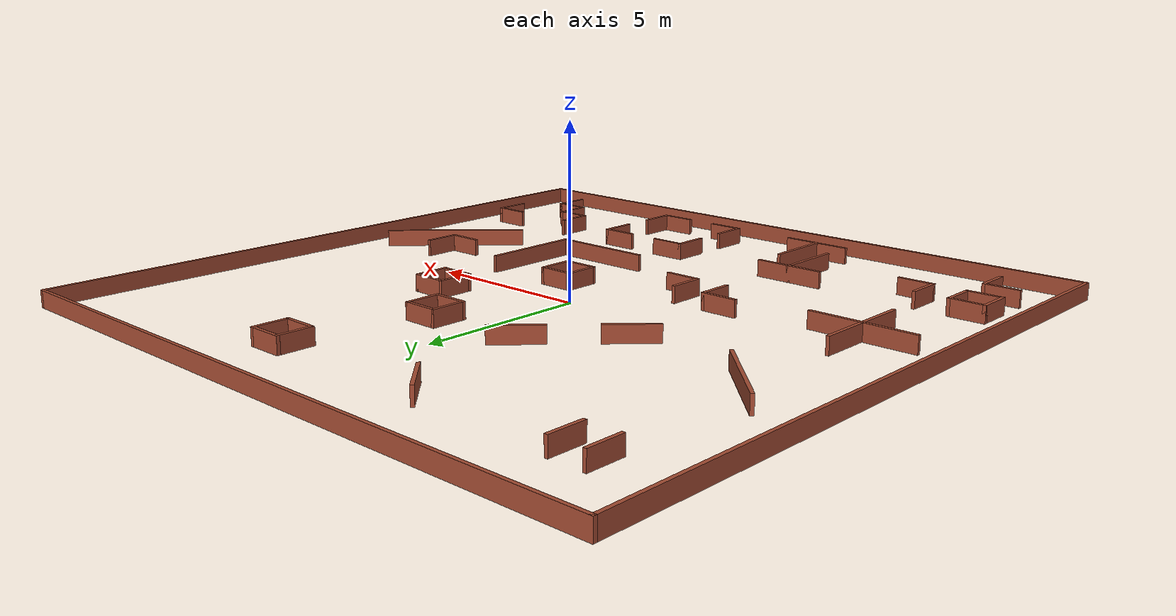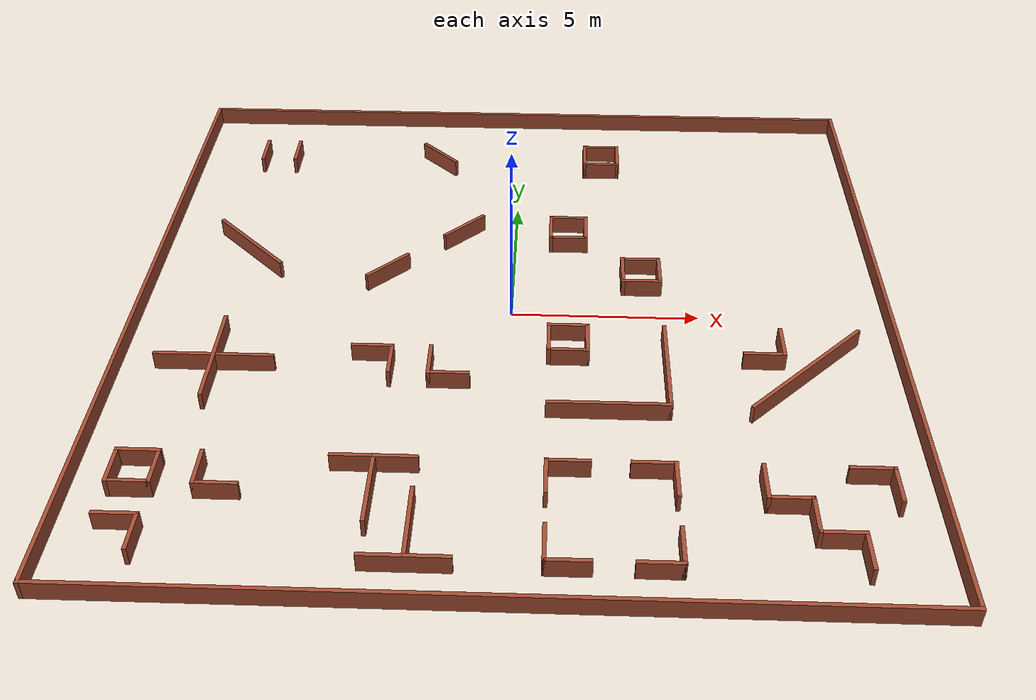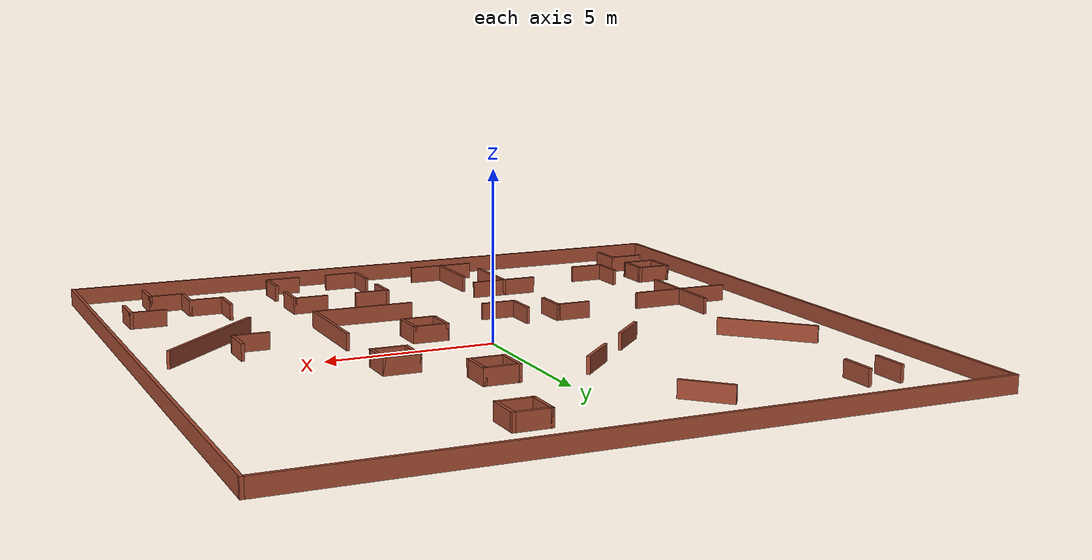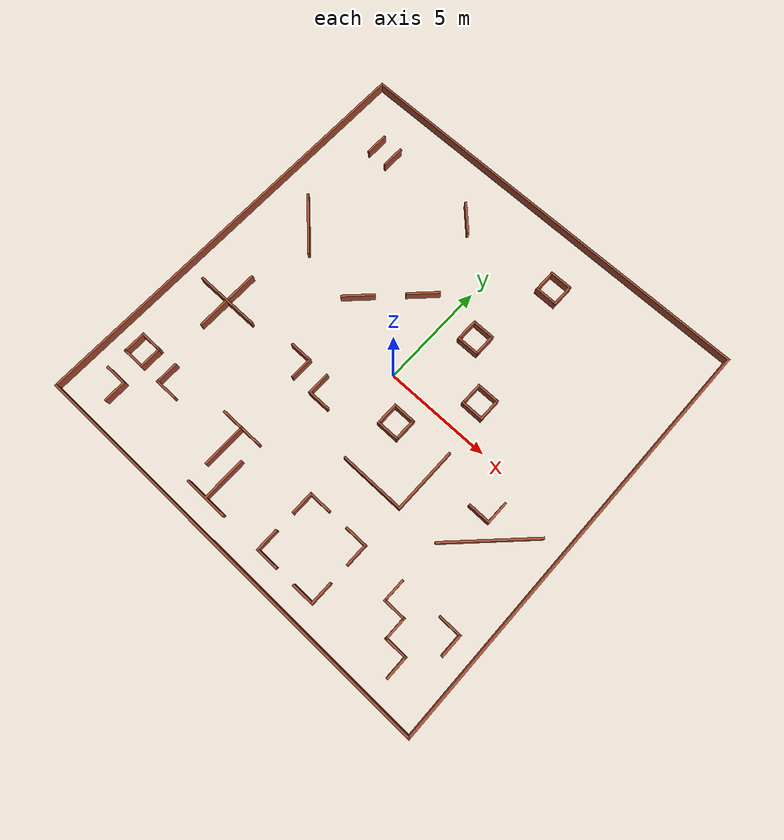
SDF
<?xml version='1.0'?>
<sdf version='1.7'>
  <model name='cur_mul'>
    <pose>0 0 0 0 -0 0</pose>
    <link name='Wall_0'>
      <collision name='Wall_0_Collision'>
        <geometry>
          <box>
            <size>20.1 0.1 0.5</size>
          </box>
        </geometry>
        <pose>0 0 0.25 0 -0 0</pose>
      </collision>
      <visual name='Wall_0_Visual'>
        <pose>0 0 0.25 0 -0 0</pose>
        <geometry>
          <box>
            <size>20.1 0.1 0.5</size>
          </box>
        </geometry>
        <material>
          <script>
            <uri>file://media/materials/scripts/gazebo.material</uri>
            <name>Gazebo/Bricks</name>
          </script>
          <ambient>0.760784 0.662745 0.627451 1</ambient>
        </material>
        <meta>
          <layer>0</layer>
        </meta>
      </visual>
      <pose>0 10 0 0 -0 3.14159</pose>
    </link>
    <link name='Wall_1'>
      <collision name='Wall_1_Collision'>
        <geometry>
          <box>
            <size>20.1 0.1 0.5</size>
          </box>
        </geometry>
        <pose>0 0 0.25 0 -0 0</pose>
      </collision>
      <visual name='Wall_1_Visual'>
        <pose>0 0 0.25 0 -0 0</pose>
        <geometry>
          <box>
            <size>20.1 0.1 0.5</size>
          </box>
        </geometry>
        <material>
          <script>
            <uri>file://media/materials/scripts/gazebo.material</uri>
            <name>Gazebo/Bricks</name>
          </script>
          <ambient>0.760784 0.662745 0.627451 1</ambient>
        </material>
        <meta>
          <layer>0</layer>
        </meta>
      </visual>
      <pose>-10 0 0 0 -0 -1.5708</pose>
    </link>
    <link name='Wall_104'>
      <collision name='Wall_104_Collision'>
        <geometry>
          <box>
            <size>1.1 0.1 0.5</size>
          </box>
        </geometry>
        <pose>0 0 0.25 0 -0 0</pose>
      </collision>
      <visual name='Wall_104_Visual'>
        <pose>0 0 0.25 0 -0 0</pose>
        <geometry>
          <box>
            <size>1.1 0.1 0.5</size>
          </box>
        </geometry>
        <material>
          <script>
            <uri>file://media/materials/scripts/gazebo.material</uri>
            <name>Gazebo/Bricks</name>
          </script>
          <ambient>0.760784 0.662745 0.627451 1</ambient>
        </material>
        <meta>
          <layer>0</layer>
        </meta>
      </visual>
      <pose>-9 -6.5 0 0 -0 -1.5708</pose>
    </link>
    <link name='Wall_105'>
      <collision name='Wall_105_Collision'>
        <geometry>
          <box>
            <size>1.1 0.1 0.5</size>
          </box>
        </geometry>
        <pose>0 0 0.25 0 -0 0</pose>
      </collision>
      <visual name='Wall_105_Visual'>
        <pose>0 0 0.25 0 -0 0</pose>
        <geometry>
          <box>
            <size>1.1 0.1 0.5</size>
          </box>
        </geometry>
        <material>
          <script>
            <uri>file://media/materials/scripts/gazebo.material</uri>
            <name>Gazebo/Bricks</name>
          </script>
          <ambient>0.760784 0.662745 0.627451 1</ambient>
        </material>
        <meta>
          <layer>0</layer>
        </meta>
      </visual>
      <pose>-8.5 -7 0 0 -0 0</pose>
    </link>
    <link name='Wall_106'>
      <collision name='Wall_106_Collision'>
        <geometry>
          <box>
            <size>1.1 0.1 0.5</size>
          </box>
        </geometry>
        <pose>0 0 0.25 0 -0 0</pose>
      </collision>
      <visual name='Wall_106_Visual'>
        <pose>0 0 0.25 0 -0 0</pose>
        <geometry>
          <box>
            <size>1.1 0.1 0.5</size>
          </box>
        </geometry>
        <material>
          <script>
            <uri>file://media/materials/scripts/gazebo.material</uri>
            <name>Gazebo/Bricks</name>
          </script>
          <ambient>0.760784 0.662745 0.627451 1</ambient>
        </material>
        <meta>
          <layer>0</layer>
        </meta>
      </visual>
      <pose>-8 -6.5 0 0 -0 1.5708</pose>
    </link>
    <link name='Wall_107'>
      <collision name='Wall_107_Collision'>
        <geometry>
          <box>
            <size>1.1 0.1 0.5</size>
          </box>
        </geometry>
        <pose>0 0 0.25 0 -0 0</pose>
      </collision>
      <visual name='Wall_107_Visual'>
        <pose>0 0 0.25 0 -0 0</pose>
        <geometry>
          <box>
            <size>1.1 0.1 0.5</size>
          </box>
        </geometry>
        <material>
          <script>
            <uri>file://media/materials/scripts/gazebo.material</uri>
            <name>Gazebo/Bricks</name>
          </script>
          <ambient>0.760784 0.662745 0.627451 1</ambient>
        </material>
        <meta>
          <layer>0</layer>
        </meta>
      </visual>
      <pose>-8.5 -6 0 0 -0 3.14159</pose>
    </link>
    <link name='Wall_109'>
      <collision name='Wall_109_Collision'>
        <geometry>
          <box>
            <size>1.1 0.1 0.5</size>
          </box>
        </geometry>
        <pose>0 0 0.25 0 -0 0</pose>
      </collision>
      <visual name='Wall_109_Visual'>
        <pose>0 0 0.25 0 -0 0</pose>
        <geometry>
          <box>
            <size>1.1 0.1 0.5</size>
          </box>
        </geometry>
        <material>
          <script>
            <uri>file://media/materials/scripts/gazebo.material</uri>
            <name>Gazebo/Bricks</name>
          </script>
          <ambient>0.760784 0.662745 0.627451 1</ambient>
        </material>
        <meta>
          <layer>0</layer>
        </meta>
      </visual>
      <pose>-7 -6.5 0 0 -0 -1.5708</pose>
    </link>
    <link name='Wall_110'>
      <collision name='Wall_110_Collision'>
        <geometry>
          <box>
            <size>1.1 0.1 0.5</size>
          </box>
        </geometry>
        <pose>0 0 0.25 0 -0 0</pose>
      </collision>
      <visual name='Wall_110_Visual'>
        <pose>0 0 0.25 0 -0 0</pose>
        <geometry>
          <box>
            <size>1.1 0.1 0.5</size>
          </box>
        </geometry>
        <material>
          <script>
            <uri>file://media/materials/scripts/gazebo.material</uri>
            <name>Gazebo/Bricks</name>
          </script>
          <ambient>0.760784 0.662745 0.627451 1</ambient>
        </material>
        <meta>
          <layer>0</layer>
        </meta>
      </visual>
      <pose>-6.5 -7 0 0 -0 0</pose>
    </link>
    <link name='Wall_112'>
      <collision name='Wall_112_Collision'>
        <geometry>
          <box>
            <size>1.1 0.1 0.5</size>
          </box>
        </geometry>
        <pose>0 0 0.25 0 -0 0</pose>
      </collision>
      <visual name='Wall_112_Visual'>
        <pose>0 0 0.25 0 -0 0</pose>
        <geometry>
          <box>
            <size>1.1 0.1 0.5</size>
          </box>
        </geometry>
        <material>
          <script>
            <uri>file://media/materials/scripts/gazebo.material</uri>
            <name>Gazebo/Bricks</name>
          </script>
          <ambient>0.760784 0.662745 0.627451 1</ambient>
        </material>
        <meta>
          <layer>0</layer>
        </meta>
      </visual>
      <pose>-8.5 -8 0 0 -0 0</pose>
    </link>
    <link name='Wall_113'>
      <collision name='Wall_113_Collision'>
        <geometry>
          <box>
            <size>1.1 0.1 0.5</size>
          </box>
        </geometry>
        <pose>0 0 0.25 0 -0 0</pose>
      </collision>
      <visual name='Wall_113_Visual'>
        <pose>0 0 0.25 0 -0 0</pose>
        <geometry>
          <box>
            <size>1.1 0.1 0.5</size>
          </box>
        </geometry>
        <material>
          <script>
            <uri>file://media/materials/scripts/gazebo.material</uri>
            <name>Gazebo/Bricks</name>
          </script>
          <ambient>0.760784 0.662745 0.627451 1</ambient>
        </material>
        <meta>
          <layer>0</layer>
        </meta>
      </visual>
      <pose>-8 -8.5 0 0 -0 -1.5708</pose>
    </link>
    <link name='Wall_115'>
      <collision name='Wall_115_Collision'>
        <geometry>
          <box>
            <size>2.1 0.1 0.5</size>
          </box>
        </geometry>
        <pose>0 0 0.25 0 -0 0</pose>
      </collision>
      <visual name='Wall_115_Visual'>
        <pose>0 0 0.25 0 -0 0</pose>
        <geometry>
          <box>
            <size>2.1 0.1 0.5</size>
          </box>
        </geometry>
        <material>
          <script>
            <uri>file://media/materials/scripts/gazebo.material</uri>
            <name>Gazebo/Bricks</name>
          </script>
          <ambient>0.760784 0.662745 0.627451 1</ambient>
        </material>
        <meta>
          <layer>0</layer>
        </meta>
      </visual>
      <pose>-3 -6 0 0 -0 0</pose>
    </link>
    <link name='Wall_117'>
      <collision name='Wall_117_Collision'>
        <geometry>
          <box>
            <size>2.1 0.1 0.5</size>
          </box>
        </geometry>
        <pose>0 0 0.25 0 -0 0</pose>
      </collision>
      <visual name='Wall_117_Visual'>
        <pose>0 0 0.25 0 -0 0</pose>
        <geometry>
          <box>
            <size>2.1 0.1 0.5</size>
          </box>
        </geometry>
        <material>
          <script>
            <uri>file://media/materials/scripts/gazebo.material</uri>
            <name>Gazebo/Bricks</name>
          </script>
          <ambient>0.760784 0.662745 0.627451 1</ambient>
        </material>
        <meta>
          <layer>0</layer>
        </meta>
      </visual>
      <pose>-3 -7 0 0 -0 -1.5708</pose>
    </link>
    <link name='Wall_119'>
      <collision name='Wall_119_Collision'>
        <geometry>
          <box>
            <size>2.1 0.1 0.5</size>
          </box>
        </geometry>
        <pose>0 0 0.25 0 -0 0</pose>
      </collision>
      <visual name='Wall_119_Visual'>
        <pose>0 0 0.25 0 -0 0</pose>
        <geometry>
          <box>
            <size>2.1 0.1 0.5</size>
          </box>
        </geometry>
        <material>
          <script>
            <uri>file://media/materials/scripts/gazebo.material</uri>
            <name>Gazebo/Bricks</name>
          </script>
          <ambient>0.760784 0.662745 0.627451 1</ambient>
        </material>
        <meta>
          <layer>0</layer>
        </meta>
      </visual>
      <pose>-2 -8 0 0 -0 -1.5708</pose>
    </link>
    <link name='Wall_121'>
      <collision name='Wall_121_Collision'>
        <geometry>
          <box>
            <size>2.1 0.1 0.5</size>
          </box>
        </geometry>
        <pose>0 0 0.25 0 -0 0</pose>
      </collision>
      <visual name='Wall_121_Visual'>
        <pose>0 0 0.25 0 -0 0</pose>
        <geometry>
          <box>
            <size>2.1 0.1 0.5</size>
          </box>
        </geometry>
        <material>
          <script>
            <uri>file://media/materials/scripts/gazebo.material</uri>
            <name>Gazebo/Bricks</name>
          </script>
          <ambient>0.760784 0.662745 0.627451 1</ambient>
        </material>
        <meta>
          <layer>0</layer>
        </meta>
      </visual>
      <pose>-2 -9 0 0 -0 0</pose>
    </link>
    <link name='Wall_128'>
      <collision name='Wall_128_Collision'>
        <geometry>
          <box>
            <size>1.1 0.1 0.5</size>
          </box>
        </geometry>
        <pose>0 0 0.25 0 -0 0</pose>
      </collision>
      <visual name='Wall_128_Visual'>
        <pose>0 0 0.25 0 -0 0</pose>
        <geometry>
          <box>
            <size>1.1 0.1 0.5</size>
          </box>
        </geometry>
        <material>
          <script>
            <uri>file://media/materials/scripts/gazebo.material</uri>
            <name>Gazebo/Bricks</name>
          </script>
          <ambient>0.760784 0.662745 0.627451 1</ambient>
        </material>
        <meta>
          <layer>0</layer>
        </meta>
      </visual>
      <pose>6 -6.5 0 0 -0 -1.5708</pose>
    </link>
    <link name='Wall_129'>
      <collision name='Wall_129_Collision'>
        <geometry>
          <box>
            <size>1.1 0.1 0.5</size>
          </box>
        </geometry>
        <pose>0 0 0.25 0 -0 0</pose>
      </collision>
      <visual name='Wall_129_Visual'>
        <pose>0 0 0.25 0 -0 0</pose>
        <geometry>
          <box>
            <size>1.1 0.1 0.5</size>
          </box>
        </geometry>
        <material>
          <script>
            <uri>file://media/materials/scripts/gazebo.material</uri>
            <name>Gazebo/Bricks</name>
          </script>
          <ambient>0.760784 0.662745 0.627451 1</ambient>
        </material>
        <meta>
          <layer>0</layer>
        </meta>
      </visual>
      <pose>6.5 -7 0 0 -0 0</pose>
    </link>
    <link name='Wall_130'>
      <collision name='Wall_130_Collision'>
        <geometry>
          <box>
            <size>1.1 0.1 0.5</size>
          </box>
        </geometry>
        <pose>0 0 0.25 0 -0 0</pose>
      </collision>
      <visual name='Wall_130_Visual'>
        <pose>0 0 0.25 0 -0 0</pose>
        <geometry>
          <box>
            <size>1.1 0.1 0.5</size>
          </box>
        </geometry>
        <material>
          <script>
            <uri>file://media/materials/scripts/gazebo.material</uri>
            <name>Gazebo/Bricks</name>
          </script>
          <ambient>0.760784 0.662745 0.627451 1</ambient>
        </material>
        <meta>
          <layer>0</layer>
        </meta>
      </visual>
      <pose>7 -7.5 0 0 -0 -1.5708</pose>
    </link>
    <link name='Wall_131'>
      <collision name='Wall_131_Collision'>
        <geometry>
          <box>
            <size>1.1 0.1 0.5</size>
          </box>
        </geometry>
        <pose>0 0 0.25 0 -0 0</pose>
      </collision>
      <visual name='Wall_131_Visual'>
        <pose>0 0 0.25 0 -0 0</pose>
        <geometry>
          <box>
            <size>1.1 0.1 0.5</size>
          </box>
        </geometry>
        <material>
          <script>
            <uri>file://media/materials/scripts/gazebo.material</uri>
            <name>Gazebo/Bricks</name>
          </script>
          <ambient>0.760784 0.662745 0.627451 1</ambient>
        </material>
        <meta>
          <layer>0</layer>
        </meta>
      </visual>
      <pose>7.5 -8 0 0 -0 0</pose>
    </link>
    <link name='Wall_132'>
      <collision name='Wall_132_Collision'>
        <geometry>
          <box>
            <size>1.1 0.1 0.5</size>
          </box>
        </geometry>
        <pose>0 0 0.25 0 -0 0</pose>
      </collision>
      <visual name='Wall_132_Visual'>
        <pose>0 0 0.25 0 -0 0</pose>
        <geometry>
          <box>
            <size>1.1 0.1 0.5</size>
          </box>
        </geometry>
        <material>
          <script>
            <uri>file://media/materials/scripts/gazebo.material</uri>
            <name>Gazebo/Bricks</name>
          </script>
          <ambient>0.760784 0.662745 0.627451 1</ambient>
        </material>
        <meta>
          <layer>0</layer>
        </meta>
      </visual>
      <pose>8 -8.5 0 0 -0 -1.5708</pose>
    </link>
    <link name='Wall_134'>
      <collision name='Wall_134_Collision'>
        <geometry>
          <box>
            <size>1.1 0.1 0.5</size>
          </box>
        </geometry>
        <pose>0 0 0.25 0 -0 0</pose>
      </collision>
      <visual name='Wall_134_Visual'>
        <pose>0 0 0.25 0 -0 0</pose>
        <geometry>
          <box>
            <size>1.1 0.1 0.5</size>
          </box>
        </geometry>
        <material>
          <script>
            <uri>file://media/materials/scripts/gazebo.material</uri>
            <name>Gazebo/Bricks</name>
          </script>
          <ambient>0.760784 0.662745 0.627451 1</ambient>
        </material>
        <meta>
          <layer>0</layer>
        </meta>
      </visual>
      <pose>8.5 -6 0 0 -0 0</pose>
    </link>
    <link name='Wall_135'>
      <collision name='Wall_135_Collision'>
        <geometry>
          <box>
            <size>1.1 0.1 0.5</size>
          </box>
        </geometry>
        <pose>0 0 0.25 0 -0 0</pose>
      </collision>
      <visual name='Wall_135_Visual'>
        <pose>0 0 0.25 0 -0 0</pose>
        <geometry>
          <box>
            <size>1.1 0.1 0.5</size>
          </box>
        </geometry>
        <material>
          <script>
            <uri>file://media/materials/scripts/gazebo.material</uri>
            <name>Gazebo/Bricks</name>
          </script>
          <ambient>0.760784 0.662745 0.627451 1</ambient>
        </material>
        <meta>
          <layer>0</layer>
        </meta>
      </visual>
      <pose>9 -6.5 0 0 -0 -1.5708</pose>
    </link>
    <link name='Wall_138'>
      <collision name='Wall_138_Collision'>
        <geometry>
          <box>
            <size>1.1 0.1 0.5</size>
          </box>
        </geometry>
        <pose>0 0 0.25 0 -0 0</pose>
      </collision>
      <visual name='Wall_138_Visual'>
        <pose>0 0 0.25 0 -0 0</pose>
        <geometry>
          <box>
            <size>1.1 0.1 0.5</size>
          </box>
        </geometry>
        <material>
          <script>
            <uri>file://media/materials/scripts/gazebo.material</uri>
            <name>Gazebo/Bricks</name>
          </script>
          <ambient>0.760784 0.662745 0.627451 1</ambient>
        </material>
        <meta>
          <layer>0</layer>
        </meta>
      </visual>
      <pose>1 -6.5 0 0 -0 1.5708</pose>
    </link>
    <link name='Wall_139'>
      <collision name='Wall_139_Collision'>
        <geometry>
          <box>
            <size>1.1 0.1 0.5</size>
          </box>
        </geometry>
        <pose>0 0 0.25 0 -0 0</pose>
      </collision>
      <visual name='Wall_139_Visual'>
        <pose>0 0 0.25 0 -0 0</pose>
        <geometry>
          <box>
            <size>1.1 0.1 0.5</size>
          </box>
        </geometry>
        <material>
          <script>
            <uri>file://media/materials/scripts/gazebo.material</uri>
            <name>Gazebo/Bricks</name>
          </script>
          <ambient>0.760784 0.662745 0.627451 1</ambient>
        </material>
        <meta>
          <layer>0</layer>
        </meta>
      </visual>
      <pose>1.5 -6 0 0 -0 0</pose>
    </link>
    <link name='Wall_141'>
      <collision name='Wall_141_Collision'>
        <geometry>
          <box>
            <size>1.1 0.1 0.5</size>
          </box>
        </geometry>
        <pose>0 0 0.25 0 -0 0</pose>
      </collision>
      <visual name='Wall_141_Visual'>
        <pose>0 0 0.25 0 -0 0</pose>
        <geometry>
          <box>
            <size>1.1 0.1 0.5</size>
          </box>
        </geometry>
        <material>
          <script>
            <uri>file://media/materials/scripts/gazebo.material</uri>
            <name>Gazebo/Bricks</name>
          </script>
          <ambient>0.760784 0.662745 0.627451 1</ambient>
        </material>
        <meta>
          <layer>0</layer>
        </meta>
      </visual>
      <pose>3.5 -6 0 0 -0 0</pose>
    </link>
    <link name='Wall_142'>
      <collision name='Wall_142_Collision'>
        <geometry>
          <box>
            <size>1.1 0.1 0.5</size>
          </box>
        </geometry>
        <pose>0 0 0.25 0 -0 0</pose>
      </collision>
      <visual name='Wall_142_Visual'>
        <pose>0 0 0.25 0 -0 0</pose>
        <geometry>
          <box>
            <size>1.1 0.1 0.5</size>
          </box>
        </geometry>
        <material>
          <script>
            <uri>file://media/materials/scripts/gazebo.material</uri>
            <name>Gazebo/Bricks</name>
          </script>
          <ambient>0.760784 0.662745 0.627451 1</ambient>
        </material>
        <meta>
          <layer>0</layer>
        </meta>
      </visual>
      <pose>4 -6.5 0 0 -0 -1.5708</pose>
    </link>
    <link name='Wall_144'>
      <collision name='Wall_144_Collision'>
        <geometry>
          <box>
            <size>1.1 0.1 0.5</size>
          </box>
        </geometry>
        <pose>0 0 0.25 0 -0 0</pose>
      </collision>
      <visual name='Wall_144_Visual'>
        <pose>0 0 0.25 0 -0 0</pose>
        <geometry>
          <box>
            <size>1.1 0.1 0.5</size>
          </box>
        </geometry>
        <material>
          <script>
            <uri>file://media/materials/scripts/gazebo.material</uri>
            <name>Gazebo/Bricks</name>
          </script>
          <ambient>0.760784 0.662745 0.627451 1</ambient>
        </material>
        <meta>
          <layer>0</layer>
        </meta>
      </visual>
      <pose>1 -8.5 0 0 -0 -1.5708</pose>
    </link>
    <link name='Wall_145'>
      <collision name='Wall_145_Collision'>
        <geometry>
          <box>
            <size>1.1 0.1 0.5</size>
          </box>
        </geometry>
        <pose>0 0 0.25 0 -0 0</pose>
      </collision>
      <visual name='Wall_145_Visual'>
        <pose>0 0 0.25 0 -0 0</pose>
        <geometry>
          <box>
            <size>1.1 0.1 0.5</size>
          </box>
        </geometry>
        <material>
          <script>
            <uri>file://media/materials/scripts/gazebo.material</uri>
            <name>Gazebo/Bricks</name>
          </script>
          <ambient>0.760784 0.662745 0.627451 1</ambient>
        </material>
        <meta>
          <layer>0</layer>
        </meta>
      </visual>
      <pose>1.5 -9 0 0 -0 0</pose>
    </link>
    <link name='Wall_147'>
      <collision name='Wall_147_Collision'>
        <geometry>
          <box>
            <size>1.1 0.1 0.5</size>
          </box>
        </geometry>
        <pose>0 0 0.25 0 -0 0</pose>
      </collision>
      <visual name='Wall_147_Visual'>
        <pose>0 0 0.25 0 -0 0</pose>
        <geometry>
          <box>
            <size>1.1 0.1 0.5</size>
          </box>
        </geometry>
        <material>
          <script>
            <uri>file://media/materials/scripts/gazebo.material</uri>
            <name>Gazebo/Bricks</name>
          </script>
          <ambient>0.760784 0.662745 0.627451 1</ambient>
        </material>
        <meta>
          <layer>0</layer>
        </meta>
      </visual>
      <pose>4 -8.5 0 0 -0 -1.5708</pose>
    </link>
    <link name='Wall_148'>
      <collision name='Wall_148_Collision'>
        <geometry>
          <box>
            <size>1.1 0.1 0.5</size>
          </box>
        </geometry>
        <pose>0 0 0.25 0 -0 0</pose>
      </collision>
      <visual name='Wall_148_Visual'>
        <pose>0 0 0.25 0 -0 0</pose>
        <geometry>
          <box>
            <size>1.1 0.1 0.5</size>
          </box>
        </geometry>
        <material>
          <script>
            <uri>file://media/materials/scripts/gazebo.material</uri>
            <name>Gazebo/Bricks</name>
          </script>
          <ambient>0.760784 0.662745 0.627451 1</ambient>
        </material>
        <meta>
          <layer>0</layer>
        </meta>
      </visual>
      <pose>3.5 -9 0 0 -0 3.14159</pose>
    </link>
    <link name='Wall_151'>
      <collision name='Wall_151_Collision'>
        <geometry>
          <box>
            <size>4.34264 0.1 0.5</size>
          </box>
        </geometry>
        <pose>0 0 0.25 0 -0 0</pose>
      </collision>
      <visual name='Wall_151_Visual'>
        <pose>0 0 0.25 0 -0 0</pose>
        <geometry>
          <box>
            <size>4.34264 0.1 0.5</size>
          </box>
        </geometry>
        <material>
          <script>
            <uri>file://media/materials/scripts/gazebo.material</uri>
            <name>Gazebo/Bricks</name>
          </script>
          <ambient>0.760784 0.662745 0.627451 1</ambient>
        </material>
        <meta>
          <layer>0</layer>
        </meta>
      </visual>
      <pose>7.5 -2.5 0 0 -0 0.785398</pose>
    </link>
    <link name='Wall_153'>
      <collision name='Wall_153_Collision'>
        <geometry>
          <box>
            <size>1.1 0.1 0.5</size>
          </box>
        </geometry>
        <pose>0 0 0.25 0 -0 0</pose>
      </collision>
      <visual name='Wall_153_Visual'>
        <pose>0 0 0.25 0 -0 0</pose>
        <geometry>
          <box>
            <size>1.1 0.1 0.5</size>
          </box>
        </geometry>
        <material>
          <script>
            <uri>file://media/materials/scripts/gazebo.material</uri>
            <name>Gazebo/Bricks</name>
          </script>
          <ambient>0.760784 0.662745 0.627451 1</ambient>
        </material>
        <meta>
          <layer>0</layer>
        </meta>
      </visual>
      <pose>7 -1.5 0 0 -0 -1.5708</pose>
    </link>
    <link name='Wall_154'>
      <collision name='Wall_154_Collision'>
        <geometry>
          <box>
            <size>1.1 0.1 0.5</size>
          </box>
        </geometry>
        <pose>0 0 0.25 0 -0 0</pose>
      </collision>
      <visual name='Wall_154_Visual'>
        <pose>0 0 0.25 0 -0 0</pose>
        <geometry>
          <box>
            <size>1.1 0.1 0.5</size>
          </box>
        </geometry>
        <material>
          <script>
            <uri>file://media/materials/scripts/gazebo.material</uri>
            <name>Gazebo/Bricks</name>
          </script>
          <ambient>0.760784 0.662745 0.627451 1</ambient>
        </material>
        <meta>
          <layer>0</layer>
        </meta>
      </visual>
      <pose>6.5 -2 0 0 -0 3.14159</pose>
    </link>
    <link name='Wall_156'>
      <collision name='Wall_156_Collision'>
        <geometry>
          <box>
            <size>3.1 0.1 0.5</size>
          </box>
        </geometry>
        <pose>0 0 0.25 0 -0 0</pose>
      </collision>
      <visual name='Wall_156_Visual'>
        <pose>0 0 0.25 0 -0 0</pose>
        <geometry>
          <box>
            <size>3.1 0.1 0.5</size>
          </box>
        </geometry>
        <material>
          <script>
            <uri>file://media/materials/scripts/gazebo.material</uri>
            <name>Gazebo/Bricks</name>
          </script>
          <ambient>0.760784 0.662745 0.627451 1</ambient>
        </material>
        <meta>
          <layer>0</layer>
        </meta>
      </visual>
      <pose>2.5 -4 0 0 -0 0</pose>
    </link>
    <link name='Wall_157'>
      <collision name='Wall_157_Collision'>
        <geometry>
          <box>
            <size>3.1 0.1 0.5</size>
          </box>
        </geometry>
        <pose>0 0 0.25 0 -0 0</pose>
      </collision>
      <visual name='Wall_157_Visual'>
        <pose>0 0 0.25 0 -0 0</pose>
        <geometry>
          <box>
            <size>3.1 0.1 0.5</size>
          </box>
        </geometry>
        <material>
          <script>
            <uri>file://media/materials/scripts/gazebo.material</uri>
            <name>Gazebo/Bricks</name>
          </script>
          <ambient>0.760784 0.662745 0.627451 1</ambient>
        </material>
        <meta>
          <layer>0</layer>
        </meta>
      </visual>
      <pose>4 -2.5 0 0 -0 1.5708</pose>
    </link>
    <link name='Wall_2'>
      <collision name='Wall_2_Collision'>
        <geometry>
          <box>
            <size>20.1 0.1 0.5</size>
          </box>
        </geometry>
        <pose>0 0 0.25 0 -0 0</pose>
      </collision>
      <visual name='Wall_2_Visual'>
        <pose>0 0 0.25 0 -0 0</pose>
        <geometry>
          <box>
            <size>20.1 0.1 0.5</size>
          </box>
        </geometry>
        <material>
          <script>
            <uri>file://media/materials/scripts/gazebo.material</uri>
            <name>Gazebo/Bricks</name>
          </script>
          <ambient>0.760784 0.662745 0.627451 1</ambient>
        </material>
        <meta>
          <layer>0</layer>
        </meta>
      </visual>
      <pose>0 -10 0 0 -0 0</pose>
    </link>
    <link name='Wall_3'>
      <collision name='Wall_3_Collision'>
        <geometry>
          <box>
            <size>20.1 0.1 0.5</size>
          </box>
        </geometry>
        <pose>0 0 0.25 0 -0 0</pose>
      </collision>
      <visual name='Wall_3_Visual'>
        <pose>0 0 0.25 0 -0 0</pose>
        <geometry>
          <box>
            <size>20.1 0.1 0.5</size>
          </box>
        </geometry>
        <material>
          <script>
            <uri>file://media/materials/scripts/gazebo.material</uri>
            <name>Gazebo/Bricks</name>
          </script>
          <ambient>0.760784 0.662745 0.627451 1</ambient>
        </material>
        <meta>
          <layer>0</layer>
        </meta>
      </visual>
      <pose>10 0 0 0 -0 1.5708</pose>
    </link>
    <link name='Wall_45'>
      <collision name='Wall_45_Collision'>
        <geometry>
          <box>
            <size>1.1 0.1 0.5</size>
          </box>
        </geometry>
        <pose>0 0 0.25 0 -0 0</pose>
      </collision>
      <visual name='Wall_45_Visual'>
        <pose>0 0 0.25 0 -0 0</pose>
        <geometry>
          <box>
            <size>1.1 0.1 0.5</size>
          </box>
        </geometry>
        <material>
          <script>
            <uri>file://media/materials/scripts/gazebo.material</uri>
            <name>Gazebo/Bricks</name>
          </script>
          <ambient>0.760784 0.662745 0.627451 1</ambient>
        </material>
        <meta>
          <layer>0</layer>
        </meta>
      </visual>
      <pose>-8 7.5 0 0 -0 -1.5708</pose>
    </link>
    <link name='Wall_47'>
      <collision name='Wall_47_Collision'>
        <geometry>
          <box>
            <size>1.1 0.1 0.5</size>
          </box>
        </geometry>
        <pose>0 0 0.25 0 -0 0</pose>
      </collision>
      <visual name='Wall_47_Visual'>
        <pose>0 0 0.25 0 -0 0</pose>
        <geometry>
          <box>
            <size>1.1 0.1 0.5</size>
          </box>
        </geometry>
        <material>
          <script>
            <uri>file://media/materials/scripts/gazebo.material</uri>
            <name>Gazebo/Bricks</name>
          </script>
          <ambient>0.760784 0.662745 0.627451 1</ambient>
        </material>
        <meta>
          <layer>0</layer>
        </meta>
      </visual>
      <pose>-7 7.5 0 0 -0 -1.5708</pose>
    </link>
    <link name='Wall_49'>
      <collision name='Wall_49_Collision'>
        <geometry>
          <box>
            <size>1.51421 0.1 0.5</size>
          </box>
        </geometry>
        <pose>0 0 0.25 0 -0 0</pose>
      </collision>
      <visual name='Wall_49_Visual'>
        <pose>0 0 0.25 0 -0 0</pose>
        <geometry>
          <box>
            <size>1.51421 0.1 0.5</size>
          </box>
        </geometry>
        <material>
          <script>
            <uri>file://media/materials/scripts/gazebo.material</uri>
            <name>Gazebo/Bricks</name>
          </script>
          <ambient>0.760784 0.662745 0.627451 1</ambient>
        </material>
        <meta>
          <layer>0</layer>
        </meta>
      </visual>
      <pose>-2.5 7.5 0 0 -0 -0.785398</pose>
    </link>
    <link name='Wall_51'>
      <collision name='Wall_51_Collision'>
        <geometry>
          <box>
            <size>1.1 0.1 0.5</size>
          </box>
        </geometry>
        <pose>0 0 0.25 0 -0 0</pose>
      </collision>
      <visual name='Wall_51_Visual'>
        <pose>0 0 0.25 0 -0 0</pose>
        <geometry>
          <box>
            <size>1.1 0.1 0.5</size>
          </box>
        </geometry>
        <material>
          <script>
            <uri>file://media/materials/scripts/gazebo.material</uri>
            <name>Gazebo/Bricks</name>
          </script>
          <ambient>0.760784 0.662745 0.627451 1</ambient>
        </material>
        <meta>
          <layer>0</layer>
        </meta>
      </visual>
      <pose>2.5 7 0 0 -0 0</pose>
    </link>
    <link name='Wall_52'>
      <collision name='Wall_52_Collision'>
        <geometry>
          <box>
            <size>1.1 0.1 0.5</size>
          </box>
        </geometry>
        <pose>0 0 0.25 0 -0 0</pose>
      </collision>
      <visual name='Wall_52_Visual'>
        <pose>0 0 0.25 0 -0 0</pose>
        <geometry>
          <box>
            <size>1.1 0.1 0.5</size>
          </box>
        </geometry>
        <material>
          <script>
            <uri>file://media/materials/scripts/gazebo.material</uri>
            <name>Gazebo/Bricks</name>
          </script>
          <ambient>0.760784 0.662745 0.627451 1</ambient>
        </material>
        <meta>
          <layer>0</layer>
        </meta>
      </visual>
      <pose>3 7.5 0 0 -0 1.5708</pose>
    </link>
    <link name='Wall_53'>
      <collision name='Wall_53_Collision'>
        <geometry>
          <box>
            <size>1.1 0.1 0.5</size>
          </box>
        </geometry>
        <pose>0 0 0.25 0 -0 0</pose>
      </collision>
      <visual name='Wall_53_Visual'>
        <pose>0 0 0.25 0 -0 0</pose>
        <geometry>
          <box>
            <size>1.1 0.1 0.5</size>
          </box>
        </geometry>
        <material>
          <script>
            <uri>file://media/materials/scripts/gazebo.material</uri>
            <name>Gazebo/Bricks</name>
          </script>
          <ambient>0.760784 0.662745 0.627451 1</ambient>
        </material>
        <meta>
          <layer>0</layer>
        </meta>
      </visual>
      <pose>2.5 8 0 0 -0 3.14159</pose>
    </link>
    <link name='Wall_54'>
      <collision name='Wall_54_Collision'>
        <geometry>
          <box>
            <size>1.1 0.1 0.5</size>
          </box>
        </geometry>
        <pose>0 0 0.25 0 -0 0</pose>
      </collision>
      <visual name='Wall_54_Visual'>
        <pose>0 0 0.25 0 -0 0</pose>
        <geometry>
          <box>
            <size>1.1 0.1 0.5</size>
          </box>
        </geometry>
        <material>
          <script>
            <uri>file://media/materials/scripts/gazebo.material</uri>
            <name>Gazebo/Bricks</name>
          </script>
          <ambient>0.760784 0.662745 0.627451 1</ambient>
        </material>
        <meta>
          <layer>0</layer>
        </meta>
      </visual>
      <pose>2 7.5 0 0 -0 -1.5708</pose>
    </link>
    <link name='Wall_56'>
      <collision name='Wall_56_Collision'>
        <geometry>
          <box>
            <size>2.92843 0.1 0.5</size>
          </box>
        </geometry>
        <pose>0 0 0.25 0 -0 0</pose>
      </collision>
      <visual name='Wall_56_Visual'>
        <pose>0 0 0.25 0 -0 0</pose>
        <geometry>
          <box>
            <size>2.92843 0.1 0.5</size>
          </box>
        </geometry>
        <material>
          <script>
            <uri>file://media/materials/scripts/gazebo.material</uri>
            <name>Gazebo/Bricks</name>
          </script>
          <ambient>0.760784 0.662745 0.627451 1</ambient>
        </material>
        <meta>
          <layer>0</layer>
        </meta>
      </visual>
      <pose>-7.5 2.5 0 0 -0 -0.785398</pose>
    </link>
    <link name='Wall_58'>
      <collision name='Wall_58_Collision'>
        <geometry>
          <box>
            <size>1.51421 0.1 0.5</size>
          </box>
        </geometry>
        <pose>0 0 0.25 0 -0 0</pose>
      </collision>
      <visual name='Wall_58_Visual'>
        <pose>0 0 0.25 0 -0 0</pose>
        <geometry>
          <box>
            <size>1.51421 0.1 0.5</size>
          </box>
        </geometry>
        <material>
          <script>
            <uri>file://media/materials/scripts/gazebo.material</uri>
            <name>Gazebo/Bricks</name>
          </script>
          <ambient>0.760784 0.662745 0.627451 1</ambient>
        </material>
        <meta>
          <layer>0</layer>
        </meta>
      </visual>
      <pose>-1.5 3.5 0 0 -0 0.785398</pose>
    </link>
    <link name='Wall_60'>
      <collision name='Wall_60_Collision'>
        <geometry>
          <box>
            <size>1.51421 0.1 0.5</size>
          </box>
        </geometry>
        <pose>0 0 0.25 0 -0 0</pose>
      </collision>
      <visual name='Wall_60_Visual'>
        <pose>0 0 0.25 0 -0 0</pose>
        <geometry>
          <box>
            <size>1.51421 0.1 0.5</size>
          </box>
        </geometry>
        <material>
          <script>
            <uri>file://media/materials/scripts/gazebo.material</uri>
            <name>Gazebo/Bricks</name>
          </script>
          <ambient>0.760784 0.662745 0.627451 1</ambient>
        </material>
        <meta>
          <layer>0</layer>
        </meta>
      </visual>
      <pose>-3.5 1.5 0 0 -0 0.785398</pose>
    </link>
    <link name='Wall_62'>
      <collision name='Wall_62_Collision'>
        <geometry>
          <box>
            <size>1.1 0.1 0.5</size>
          </box>
        </geometry>
        <pose>0 0 0.25 0 -0 0</pose>
      </collision>
      <visual name='Wall_62_Visual'>
        <pose>0 0 0.25 0 -0 0</pose>
        <geometry>
          <box>
            <size>1.1 0.1 0.5</size>
          </box>
        </geometry>
        <material>
          <script>
            <uri>file://media/materials/scripts/gazebo.material</uri>
            <name>Gazebo/Bricks</name>
          </script>
          <ambient>0.760784 0.662745 0.627451 1</ambient>
        </material>
        <meta>
          <layer>0</layer>
        </meta>
      </visual>
      <pose>2 3.5 0 0 -0 -1.5708</pose>
    </link>
    <link name='Wall_63'>
      <collision name='Wall_63_Collision'>
        <geometry>
          <box>
            <size>1.1 0.1 0.5</size>
          </box>
        </geometry>
        <pose>0 0 0.25 0 -0 0</pose>
      </collision>
      <visual name='Wall_63_Visual'>
        <pose>0 0 0.25 0 -0 0</pose>
        <geometry>
          <box>
            <size>1.1 0.1 0.5</size>
          </box>
        </geometry>
        <material>
          <script>
            <uri>file://media/materials/scripts/gazebo.material</uri>
            <name>Gazebo/Bricks</name>
          </script>
          <ambient>0.760784 0.662745 0.627451 1</ambient>
        </material>
        <meta>
          <layer>0</layer>
        </meta>
      </visual>
      <pose>1.5 3 0 0 -0 3.14159</pose>
    </link>
    <link name='Wall_64'>
      <collision name='Wall_64_Collision'>
        <geometry>
          <box>
            <size>1.1 0.1 0.5</size>
          </box>
        </geometry>
        <pose>0 0 0.25 0 -0 0</pose>
      </collision>
      <visual name='Wall_64_Visual'>
        <pose>0 0 0.25 0 -0 0</pose>
        <geometry>
          <box>
            <size>1.1 0.1 0.5</size>
          </box>
        </geometry>
        <material>
          <script>
            <uri>file://media/materials/scripts/gazebo.material</uri>
            <name>Gazebo/Bricks</name>
          </script>
          <ambient>0.760784 0.662745 0.627451 1</ambient>
        </material>
        <meta>
          <layer>0</layer>
        </meta>
      </visual>
      <pose>1 3.5 0 0 -0 1.5708</pose>
    </link>
    <link name='Wall_65'>
      <collision name='Wall_65_Collision'>
        <geometry>
          <box>
            <size>1.1 0.1 0.5</size>
          </box>
        </geometry>
        <pose>0 0 0.25 0 -0 0</pose>
      </collision>
      <visual name='Wall_65_Visual'>
        <pose>0 0 0.25 0 -0 0</pose>
        <geometry>
          <box>
            <size>1.1 0.1 0.5</size>
          </box>
        </geometry>
        <material>
          <script>
            <uri>file://media/materials/scripts/gazebo.material</uri>
            <name>Gazebo/Bricks</name>
          </script>
          <ambient>0.760784 0.662745 0.627451 1</ambient>
        </material>
        <meta>
          <layer>0</layer>
        </meta>
      </visual>
      <pose>1.5 4 0 0 -0 0</pose>
    </link>
    <link name='Wall_67'>
      <collision name='Wall_67_Collision'>
        <geometry>
          <box>
            <size>1.1 0.1 0.5</size>
          </box>
        </geometry>
        <pose>0 0 0.25 0 -0 0</pose>
      </collision>
      <visual name='Wall_67_Visual'>
        <pose>0 0 0.25 0 -0 0</pose>
        <geometry>
          <box>
            <size>1.1 0.1 0.5</size>
          </box>
        </geometry>
        <material>
          <script>
            <uri>file://media/materials/scripts/gazebo.material</uri>
            <name>Gazebo/Bricks</name>
          </script>
          <ambient>0.760784 0.662745 0.627451 1</ambient>
        </material>
        <meta>
          <layer>0</layer>
        </meta>
      </visual>
      <pose>4 1.5 0 0 -0 -1.5708</pose>
    </link>
    <link name='Wall_68'>
      <collision name='Wall_68_Collision'>
        <geometry>
          <box>
            <size>1.1 0.1 0.5</size>
          </box>
        </geometry>
        <pose>0 0 0.25 0 -0 0</pose>
      </collision>
      <visual name='Wall_68_Visual'>
        <pose>0 0 0.25 0 -0 0</pose>
        <geometry>
          <box>
            <size>1.1 0.1 0.5</size>
          </box>
        </geometry>
        <material>
          <script>
            <uri>file://media/materials/scripts/gazebo.material</uri>
            <name>Gazebo/Bricks</name>
          </script>
          <ambient>0.760784 0.662745 0.627451 1</ambient>
        </material>
        <meta>
          <layer>0</layer>
        </meta>
      </visual>
      <pose>3.5 1 0 0 -0 3.14159</pose>
    </link>
    <link name='Wall_69'>
      <collision name='Wall_69_Collision'>
        <geometry>
          <box>
            <size>1.1 0.1 0.5</size>
          </box>
        </geometry>
        <pose>0 0 0.25 0 -0 0</pose>
      </collision>
      <visual name='Wall_69_Visual'>
        <pose>0 0 0.25 0 -0 0</pose>
        <geometry>
          <box>
            <size>1.1 0.1 0.5</size>
          </box>
        </geometry>
        <material>
          <script>
            <uri>file://media/materials/scripts/gazebo.material</uri>
            <name>Gazebo/Bricks</name>
          </script>
          <ambient>0.760784 0.662745 0.627451 1</ambient>
        </material>
        <meta>
          <layer>0</layer>
        </meta>
      </visual>
      <pose>3 1.5 0 0 -0 1.5708</pose>
    </link>
    <link name='Wall_70'>
      <collision name='Wall_70_Collision'>
        <geometry>
          <box>
            <size>1.1 0.1 0.5</size>
          </box>
        </geometry>
        <pose>0 0 0.25 0 -0 0</pose>
      </collision>
      <visual name='Wall_70_Visual'>
        <pose>0 0 0.25 0 -0 0</pose>
        <geometry>
          <box>
            <size>1.1 0.1 0.5</size>
          </box>
        </geometry>
        <material>
          <script>
            <uri>file://media/materials/scripts/gazebo.material</uri>
            <name>Gazebo/Bricks</name>
          </script>
          <ambient>0.760784 0.662745 0.627451 1</ambient>
        </material>
        <meta>
          <layer>0</layer>
        </meta>
      </visual>
      <pose>3.5 2 0 0 -0 0</pose>
    </link>
    <link name='Wall_72'>
      <collision name='Wall_72_Collision'>
        <geometry>
          <box>
            <size>3.1 0.1 0.5</size>
          </box>
        </geometry>
        <pose>0 0 0.25 0 -0 0</pose>
      </collision>
      <visual name='Wall_72_Visual'>
        <pose>0 0 0.25 0 -0 0</pose>
        <geometry>
          <box>
            <size>3.1 0.1 0.5</size>
          </box>
        </geometry>
        <material>
          <script>
            <uri>file://media/materials/scripts/gazebo.material</uri>
            <name>Gazebo/Bricks</name>
          </script>
          <ambient>0.760784 0.662745 0.627451 1</ambient>
        </material>
        <meta>
          <layer>0</layer>
        </meta>
      </visual>
      <pose>-7.5 -2.5 0 0 -0 0</pose>
    </link>
    <link name='Wall_74'>
      <collision name='Wall_74_Collision'>
        <geometry>
          <box>
            <size>3.1 0.1 0.5</size>
          </box>
        </geometry>
        <pose>0 0 0.25 0 -0 0</pose>
      </collision>
      <visual name='Wall_74_Visual'>
        <pose>0 0 0.25 0 -0 0</pose>
        <geometry>
          <box>
            <size>3.1 0.1 0.5</size>
          </box>
        </geometry>
        <material>
          <script>
            <uri>file://media/materials/scripts/gazebo.material</uri>
            <name>Gazebo/Bricks</name>
          </script>
          <ambient>0.760784 0.662745 0.627451 1</ambient>
        </material>
        <meta>
          <layer>0</layer>
        </meta>
      </visual>
      <pose>-7.5 -2.5 0 0 -0 -1.5708</pose>
    </link>
    <link name='Wall_76'>
      <collision name='Wall_76_Collision'>
        <geometry>
          <box>
            <size>1.1 0.1 0.5</size>
          </box>
        </geometry>
        <pose>0 0 0.25 0 -0 0</pose>
      </collision>
      <visual name='Wall_76_Visual'>
        <pose>0 0 0.25 0 -0 0</pose>
        <geometry>
          <box>
            <size>1.1 0.1 0.5</size>
          </box>
        </geometry>
        <material>
          <script>
            <uri>file://media/materials/scripts/gazebo.material</uri>
            <name>Gazebo/Bricks</name>
          </script>
          <ambient>0.760784 0.662745 0.627451 1</ambient>
        </material>
        <meta>
          <layer>0</layer>
        </meta>
      </visual>
      <pose>-3.5 -2 0 0 -0 0</pose>
    </link>
    <link name='Wall_77'>
      <collision name='Wall_77_Collision'>
        <geometry>
          <box>
            <size>1.1 0.1 0.5</size>
          </box>
        </geometry>
        <pose>0 0 0.25 0 -0 0</pose>
      </collision>
      <visual name='Wall_77_Visual'>
        <pose>0 0 0.25 0 -0 0</pose>
        <geometry>
          <box>
            <size>1.1 0.1 0.5</size>
          </box>
        </geometry>
        <material>
          <script>
            <uri>file://media/materials/scripts/gazebo.material</uri>
            <name>Gazebo/Bricks</name>
          </script>
          <ambient>0.760784 0.662745 0.627451 1</ambient>
        </material>
        <meta>
          <layer>0</layer>
        </meta>
      </visual>
      <pose>-3 -2.5 0 0 -0 -1.5708</pose>
    </link>
    <link name='Wall_79'>
      <collision name='Wall_79_Collision'>
        <geometry>
          <box>
            <size>1.1 0.1 0.5</size>
          </box>
        </geometry>
        <pose>0 0 0.25 0 -0 0</pose>
      </collision>
      <visual name='Wall_79_Visual'>
        <pose>0 0 0.25 0 -0 0</pose>
        <geometry>
          <box>
            <size>1.1 0.1 0.5</size>
          </box>
        </geometry>
        <material>
          <script>
            <uri>file://media/materials/scripts/gazebo.material</uri>
            <name>Gazebo/Bricks</name>
          </script>
          <ambient>0.760784 0.662745 0.627451 1</ambient>
        </material>
        <meta>
          <layer>0</layer>
        </meta>
      </visual>
      <pose>-2 -2.5 0 0 -0 -1.5708</pose>
    </link>
    <link name='Wall_80'>
      <collision name='Wall_80_Collision'>
        <geometry>
          <box>
            <size>1.1 0.1 0.5</size>
          </box>
        </geometry>
        <pose>0 0 0.25 0 -0 0</pose>
      </collision>
      <visual name='Wall_80_Visual'>
        <pose>0 0 0.25 0 -0 0</pose>
        <geometry>
          <box>
            <size>1.1 0.1 0.5</size>
          </box>
        </geometry>
        <material>
          <script>
            <uri>file://media/materials/scripts/gazebo.material</uri>
            <name>Gazebo/Bricks</name>
          </script>
          <ambient>0.760784 0.662745 0.627451 1</ambient>
        </material>
        <meta>
          <layer>0</layer>
        </meta>
      </visual>
      <pose>-1.5 -3 0 0 -0 0</pose>
    </link>
    <link name='Wall_82'>
      <collision name='Wall_82_Collision'>
        <geometry>
          <box>
            <size>1.1 0.1 0.5</size>
          </box>
        </geometry>
        <pose>0 0 0.25 0 -0 0</pose>
      </collision>
      <visual name='Wall_82_Visual'>
        <pose>0 0 0.25 0 -0 0</pose>
        <geometry>
          <box>
            <size>1.1 0.1 0.5</size>
          </box>
        </geometry>
        <material>
          <script>
            <uri>file://media/materials/scripts/gazebo.material</uri>
            <name>Gazebo/Bricks</name>
          </script>
          <ambient>0.760784 0.662745 0.627451 1</ambient>
        </material>
        <meta>
          <layer>0</layer>
        </meta>
      </visual>
      <pose>2 -1.5 0 0 -0 -1.5708</pose>
    </link>
    <link name='Wall_83'>
      <collision name='Wall_83_Collision'>
        <geometry>
          <box>
            <size>1.1 0.1 0.5</size>
          </box>
        </geometry>
        <pose>0 0 0.25 0 -0 0</pose>
      </collision>
      <visual name='Wall_83_Visual'>
        <pose>0 0 0.25 0 -0 0</pose>
        <geometry>
          <box>
            <size>1.1 0.1 0.5</size>
          </box>
        </geometry>
        <material>
          <script>
            <uri>file://media/materials/scripts/gazebo.material</uri>
            <name>Gazebo/Bricks</name>
          </script>
          <ambient>0.760784 0.662745 0.627451 1</ambient>
        </material>
        <meta>
          <layer>0</layer>
        </meta>
      </visual>
      <pose>1.5 -2 0 0 -0 3.14159</pose>
    </link>
    <link name='Wall_84'>
      <collision name='Wall_84_Collision'>
        <geometry>
          <box>
            <size>1.1 0.1 0.5</size>
          </box>
        </geometry>
        <pose>0 0 0.25 0 -0 0</pose>
      </collision>
      <visual name='Wall_84_Visual'>
        <pose>0 0 0.25 0 -0 0</pose>
        <geometry>
          <box>
            <size>1.1 0.1 0.5</size>
          </box>
        </geometry>
        <material>
          <script>
            <uri>file://media/materials/scripts/gazebo.material</uri>
            <name>Gazebo/Bricks</name>
          </script>
          <ambient>0.760784 0.662745 0.627451 1</ambient>
        </material>
        <meta>
          <layer>0</layer>
        </meta>
      </visual>
      <pose>1 -1.5 0 0 -0 1.5708</pose>
    </link>
    <link name='Wall_85'>
      <collision name='Wall_85_Collision'>
        <geometry>
          <box>
            <size>1.1 0.1 0.5</size>
          </box>
        </geometry>
        <pose>0 0 0.25 0 -0 0</pose>
      </collision>
      <visual name='Wall_85_Visual'>
        <pose>0 0 0.25 0 -0 0</pose>
        <geometry>
          <box>
            <size>1.1 0.1 0.5</size>
          </box>
        </geometry>
        <material>
          <script>
            <uri>file://media/materials/scripts/gazebo.material</uri>
            <name>Gazebo/Bricks</name>
          </script>
          <ambient>0.760784 0.662745 0.627451 1</ambient>
        </material>
        <meta>
          <layer>0</layer>
        </meta>
      </visual>
      <pose>1.5 -1 0 0 -0 0</pose>
    </link>
    <static>1</static>
  </model>
</sdf>
